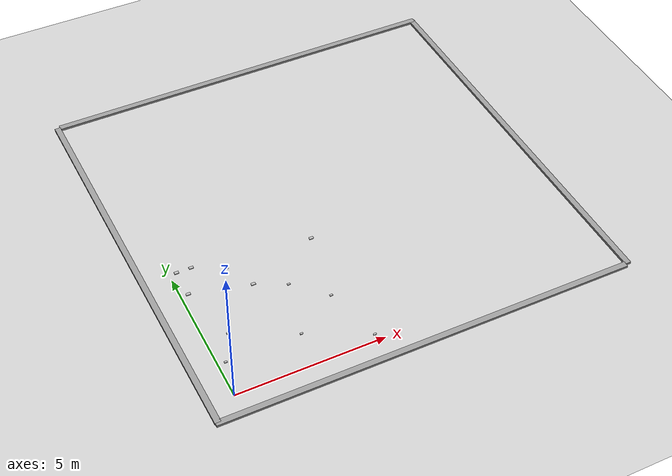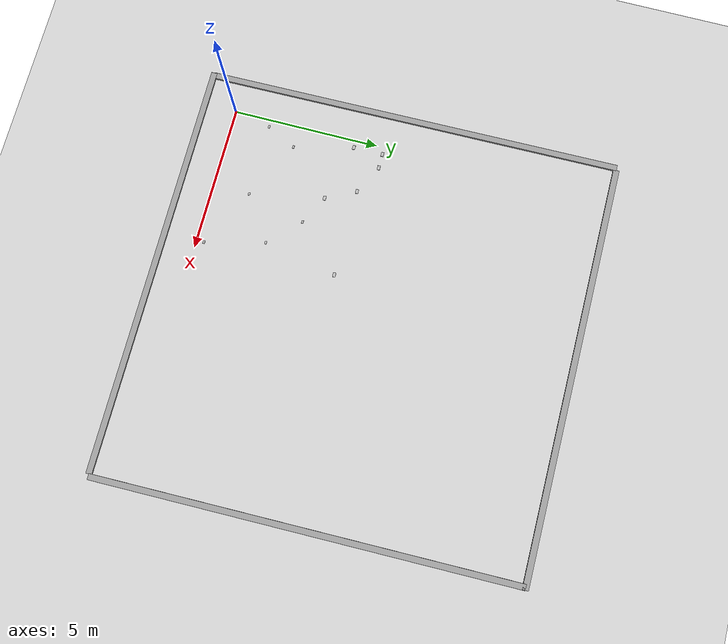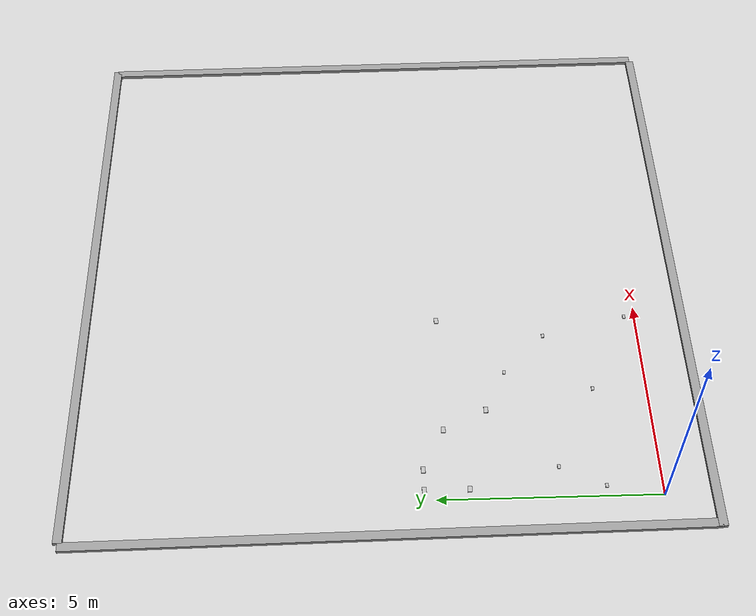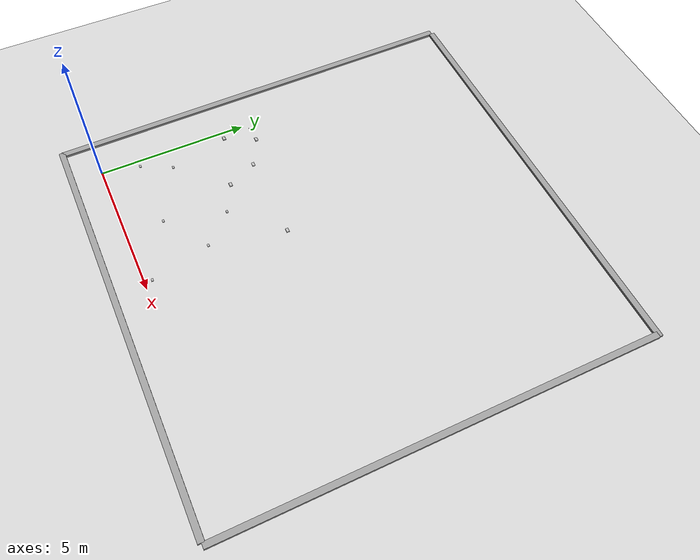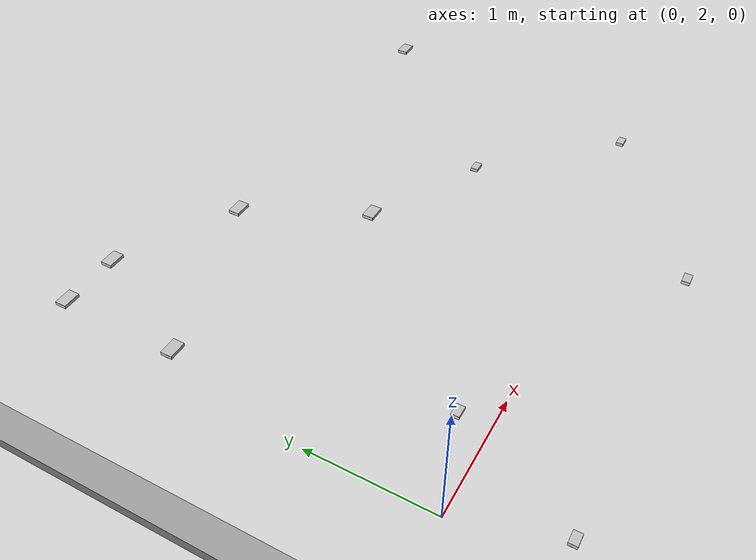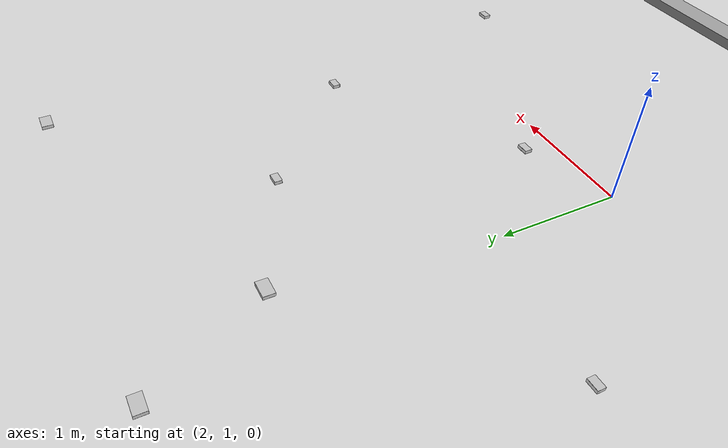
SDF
<sdf version="1.6">
 <world name="default">
  <light name="sun" type="directional">
   <pose>0 0 10 0 -0 0</pose>
   <diffuse>0.8 0.8 0.8 1</diffuse>
   <specular>0.1 0.1 0.1 1</specular>
   <attenuation>
    <range>1000</range>
    <constant>0.9</constant>
    <linear>0.01</linear>
    <quadratic>0.001</quadratic>
   </attenuation>
   <direction>-0.5 0.5 -1</direction>
  </light>
  <model name="ground_plane">
   <static>1</static>
   <link name="link">
    <collision name="collision">
     <geometry><plane><normal>0 0 1</normal><size>100 100</size></plane></geometry>
     <surface><friction><ode><mu>100</mu><mu2>50</mu2></ode></friction></surface>
    </collision>
    <visual name="visual">
     <cast_shadows>0</cast_shadows>
     <geometry><plane><normal>0 0 1</normal><size>100 100</size></plane></geometry>
     <material>
      <script><uri>file://media/materials/scripts/gazebo.material</uri><name>Gazebo/Grey</name></script>
     </material>
    </visual>
   </link>
  </model>
  <gravity>0 0 -9.8</gravity>
  <magnetic_field>6e-06 2.3e-05 -4.2e-05</magnetic_field>
  <atmosphere type="adiabatic"/>
  <physics name="default_physics" default="0" type="ode">
   <max_step_size>0.001</max_step_size>
   <real_time_factor>1</real_time_factor>
   <real_time_update_rate>1000</real_time_update_rate>
  </physics>
  <scene><ambient>0.4 0.4 0.4 1</ambient><background>0.7 0.7 0.7 1</background><shadows>1</shadows></scene>
  <spherical_coordinates>
   <surface_model>EARTH_WGS84</surface_model>
   <latitude_deg>0</latitude_deg>
   <longitude_deg>0</longitude_deg>
   <elevation>0</elevation>
   <heading_deg>0</heading_deg>
  </spherical_coordinates>
  <model name="wall1">
   <static>1</static>
   <link name="link">
    <pose>0 0 0.42 0 -0 0</pose>
    <collision name="collision"><geometry><box><size>14 0.2 0.084</size></box></geometry></collision>
    <visual name="visual">
     <cast_shadows>0</cast_shadows>
     <geometry><box><size>14 0.2 0.084</size></box></geometry>
     <material>
      <script>
       <uri>model://grey_wall/materials/scripts</uri>
       <uri>model://grey_wall/materials/textures</uri>
       <name>vrc/grey_wall</name>
      </script>
     </material>
    </visual>
   </link>
   <pose>-1 6.0 0 0 -0 -1.55905</pose>
  </model>
  <model name="wall2">
   <static>1</static>
   <link name="link">
    <pose>0 0 0.42 0 -0 0</pose>
    <collision name="collision"><geometry><box><size>14 0.2 0.084</size></box></geometry></collision>
    <visual name="visual">
     <cast_shadows>0</cast_shadows>
     <geometry><box><size>14 0.2 0.084</size></box></geometry>
     <material>
      <script>
       <uri>model://grey_wall/materials/scripts</uri>
       <uri>model://grey_wall/materials/textures</uri>
       <name>vrc/grey_wall</name>
      </script>
     </material>
    </visual>
   </link>
   <pose>6.0 13.0 0 0 -0 0</pose>
  </model>
  <model name="wall3">
   <static>1</static>
   <link name="link">
    <pose>0 0 0.42 0 -0 0</pose>
    <collision name="collision"><geometry><box><size>14 0.2 0.084</size></box></geometry></collision>
    <visual name="visual">
     <cast_shadows>0</cast_shadows>
     <geometry><box><size>14 0.2 0.084</size></box></geometry>
     <material>
      <script>
       <uri>model://grey_wall/materials/scripts</uri>
       <uri>model://grey_wall/materials/textures</uri>
       <name>vrc/grey_wall</name>
      </script>
     </material>
    </visual>
   </link>
   <pose>13.0 6.0 0 0 -0 -1.55905</pose>
  </model>
  <model name="wall4">
   <static>1</static>
   <link name="link">
    <pose>0 0 0.42 0 -0 0</pose>
    <collision name="collision"><geometry><box><size>14 0.2 0.084</size></box></geometry></collision>
    <visual name="visual">
     <cast_shadows>0</cast_shadows>
     <geometry><box><size>14 0.2 0.084</size></box></geometry>
     <material>
      <script>
       <uri>model://grey_wall/materials/scripts</uri>
       <uri>model://grey_wall/materials/textures</uri>
       <name>vrc/grey_wall</name>
      </script>
     </material>
    </visual>
   </link>
   <pose>6.0 -1 0 0 -0 0</pose>
  </model>
  <model name="book_1">
   <link name="cover">
    <pose>0 -0.000108 0.015405 0 -0 0</pose>
    <visual name="visual">
     <geometry><box><size>0.098 0.064 0.03</size></box></geometry>
     <material>
      <script>
       <uri>model://book_1/materials/scripts/book_1.material</uri>
       <uri>model://book_1/materials/textures/cover1.jpg</uri>
       <name>book_1</name>
      </script>
     </material>
    </visual>
    <collision name="collision">
     <geometry><box><size>0.098 0.064 0.03</size></box></geometry>
     <surface><friction><ode><mu>1000</mu><mu2>1000</mu2></ode></friction></surface>
    </collision>
    <inertial>
     <inertia><ixx>0.00058</ixx><ixy>0</ixy><ixz>0</ixz><iyy>0.00058</iyy><iyz>0</iyz><izz>0.00019</izz></inertia>
     <mass>0.05</mass>
    </inertial>
   </link>
   <link name="page">
    <pose>0 0.000608 0.015405 0 -0 0</pose>
    <visual name="visual">
     <geometry><box><size>0.098008 0.063448 0.028</size></box></geometry>
     <material>
      <lighting>1</lighting>
      <ambient>1 1 1 1</ambient>
      <diffuse>1 1 1 1</diffuse>
      <specular>0.01 0.01 0.01 1</specular>
      <emissive>0 0 0 1</emissive>
      <shader type="vertex"><normal_map>__default__</normal_map></shader>
     </material>
    </visual>
    <collision name="collision">
     <geometry><box><size>0.098 0.064 0.03</size></box></geometry>
     <surface><friction><ode><mu>1000</mu><mu2>1000</mu2></ode></friction></surface>
    </collision>
    <inertial>
     <inertia><ixx>0.00058</ixx><ixy>0</ixy><ixz>0</ixz><iyy>0.00058</iyy><iyz>0</iyz><izz>0.00019</izz></inertia>
     <mass>0.05</mass>
    </inertial>
   </link>
   <static>0</static>
   <pose>0.75 2.25 -0.000405 -1e-06 1e-06 0</pose>
  </model>
  <model name="book_2">
   <link name="cover">
    <pose>0 -0.000108 0.015405 0 -0 0</pose>
    <visual name="visual">
     <geometry><box><size>0.098 0.064 0.03</size></box></geometry>
     <material>
      <script>
       <uri>model://book_1/materials/scripts/book_1.material</uri>
       <uri>model://book_1/materials/textures/cover1.jpg</uri>
       <name>book_1</name>
      </script>
     </material>
    </visual>
    <collision name="collision">
     <geometry><box><size>0.098 0.064 0.03</size></box></geometry>
     <surface><friction><ode><mu>1000</mu><mu2>1000</mu2></ode></friction></surface>
    </collision>
    <inertial>
     <inertia><ixx>0.00058</ixx><ixy>0</ixy><ixz>0</ixz><iyy>0.00058</iyy><iyz>0</iyz><izz>0.00019</izz></inertia>
     <mass>0.05</mass>
    </inertial>
   </link>
   <link name="page">
    <pose>0 0.000608 0.015405 0 -0 0</pose>
    <visual name="visual">
     <geometry><box><size>0.098008 0.063448 0.028</size></box></geometry>
     <material>
      <lighting>1</lighting>
      <ambient>1 1 1 1</ambient>
      <diffuse>1 1 1 1</diffuse>
      <specular>0.01 0.01 0.01 1</specular>
      <emissive>0 0 0 1</emissive>
      <shader type="vertex"><normal_map>__default__</normal_map></shader>
     </material>
    </visual>
    <collision name="collision">
     <geometry><box><size>0.098 0.064 0.03</size></box></geometry>
     <surface><friction><ode><mu>1000</mu><mu2>1000</mu2></ode></friction></surface>
    </collision>
    <inertial>
     <inertia><ixx>0.00058</ixx><ixy>0</ixy><ixz>0</ixz><iyy>0.00058</iyy><iyz>0</iyz><izz>0.00019</izz></inertia>
     <mass>0.05</mass>
    </inertial>
   </link>
   <static>0</static>
   <pose>4.75 0.25 -0.000405 -1e-06 1e-06 0</pose>
  </model>
  <model name="book_3">
   <link name="cover">
    <pose>0 -0.000108 0.015405 0 -0 0</pose>
    <visual name="visual">
     <geometry><box><size>0.098 0.064 0.03</size></box></geometry>
     <material>
      <script>
       <uri>model://book_1/materials/scripts/book_1.material</uri>
       <uri>model://book_1/materials/textures/cover1.jpg</uri>
       <name>book_1</name>
      </script>
     </material>
    </visual>
    <collision name="collision">
     <geometry><box><size>0.098 0.064 0.03</size></box></geometry>
     <surface><friction><ode><mu>1000</mu><mu2>1000</mu2></ode></friction></surface>
    </collision>
    <inertial>
     <inertia><ixx>0.00058</ixx><ixy>0</ixy><ixz>0</ixz><iyy>0.00058</iyy><iyz>0</iyz><izz>0.00019</izz></inertia>
     <mass>0.05</mass>
    </inertial>
   </link>
   <link name="page">
    <pose>0 0.000608 0.015405 0 -0 0</pose>
    <visual name="visual">
     <geometry><box><size>0.098008 0.063448 0.028</size></box></geometry>
     <material>
      <lighting>1</lighting>
      <ambient>1 1 1 1</ambient>
      <diffuse>1 1 1 1</diffuse>
      <specular>0.01 0.01 0.01 1</specular>
      <emissive>0 0 0 1</emissive>
      <shader type="vertex"><normal_map>__default__</normal_map></shader>
     </material>
    </visual>
    <collision name="collision">
     <geometry><box><size>0.098 0.064 0.03</size></box></geometry>
     <surface><friction><ode><mu>1000</mu><mu2>1000</mu2></ode></friction></surface>
    </collision>
    <inertial>
     <inertia><ixx>0.00058</ixx><ixy>0</ixy><ixz>0</ixz><iyy>0.00058</iyy><iyz>0</iyz><izz>0.00019</izz></inertia>
     <mass>0.05</mass>
    </inertial>
   </link>
   <static>0</static>
   <pose>3.25 3.25 -0.000405 -1e-06 1e-06 0</pose>
  </model>
  <model name="book_4">
   <link name="cover">
    <pose>0 -0.000108 0.015405 0 -0 0</pose>
    <visual name="visual">
     <geometry><box><size>0.147 0.096 0.03</size></box></geometry>
     <material>
      <script>
       <uri>model://book_1/materials/scripts/book_1.material</uri>
       <uri>model://book_1/materials/textures/cover1.jpg</uri>
       <name>book_1</name>
      </script>
     </material>
    </visual>
    <collision name="collision">
     <geometry><box><size>0.147 0.096 0.03</size></box></geometry>
     <surface><friction><ode><mu>1000</mu><mu2>1000</mu2></ode></friction></surface>
    </collision>
    <inertial>
     <inertia><ixx>0.00058</ixx><ixy>0</ixy><ixz>0</ixz><iyy>0.00058</iyy><iyz>0</iyz><izz>0.00019</izz></inertia>
     <mass>0.05</mass>
    </inertial>
   </link>
   <link name="page">
    <pose>0 0.000608 0.015405 0 -0 0</pose>
    <visual name="visual">
     <geometry><box><size>0.147012 0.095172 0.028</size></box></geometry>
     <material>
      <lighting>1</lighting>
      <ambient>1 1 1 1</ambient>
      <diffuse>1 1 1 1</diffuse>
      <specular>0.01 0.01 0.01 1</specular>
      <emissive>0 0 0 1</emissive>
      <shader type="vertex"><normal_map>__default__</normal_map></shader>
     </material>
    </visual>
    <collision name="collision">
     <geometry><box><size>0.147 0.096 0.03</size></box></geometry>
     <surface><friction><ode><mu>1000</mu><mu2>1000</mu2></ode></friction></surface>
    </collision>
    <inertial>
     <inertia><ixx>0.00058</ixx><ixy>0</ixy><ixz>0</ixz><iyy>0.00058</iyy><iyz>0</iyz><izz>0.00019</izz></inertia>
     <mass>0.05</mass>
    </inertial>
   </link>
   <static>0</static>
   <pose>0.75 5.25 -0.000405 -1e-06 1e-06 0</pose>
  </model>
  <model name="book_5">
   <link name="cover">
    <pose>0 -0.000108 0.015405 0 -0 0</pose>
    <visual name="visual">
     <geometry><box><size>0.147 0.096 0.03</size></box></geometry>
     <material>
      <script>
       <uri>model://book_1/materials/scripts/book_1.material</uri>
       <uri>model://book_1/materials/textures/cover1.jpg</uri>
       <name>book_1</name>
      </script>
     </material>
    </visual>
    <collision name="collision">
     <geometry><box><size>0.147 0.096 0.03</size></box></geometry>
     <surface><friction><ode><mu>1000</mu><mu2>1000</mu2></ode></friction></surface>
    </collision>
    <inertial>
     <inertia><ixx>0.00058</ixx><ixy>0</ixy><ixz>0</ixz><iyy>0.00058</iyy><iyz>0</iyz><izz>0.00019</izz></inertia>
     <mass>0.05</mass>
    </inertial>
   </link>
   <link name="page">
    <pose>0 0.000608 0.015405 0 -0 0</pose>
    <visual name="visual">
     <geometry><box><size>0.147012 0.095172 0.028</size></box></geometry>
     <material>
      <lighting>1</lighting>
      <ambient>1 1 1 1</ambient>
      <diffuse>1 1 1 1</diffuse>
      <specular>0.01 0.01 0.01 1</specular>
      <emissive>0 0 0 1</emissive>
      <shader type="vertex"><normal_map>__default__</normal_map></shader>
     </material>
    </visual>
    <collision name="collision">
     <geometry><box><size>0.147 0.096 0.03</size></box></geometry>
     <surface><friction><ode><mu>1000</mu><mu2>1000</mu2></ode></friction></surface>
    </collision>
    <inertial>
     <inertia><ixx>0.00058</ixx><ixy>0</ixy><ixz>0</ixz><iyy>0.00058</iyy><iyz>0</iyz><izz>0.00019</izz></inertia>
     <mass>0.05</mass>
    </inertial>
   </link>
   <static>0</static>
   <pose>1.75 4.75 -0.000405 -1e-06 1e-06 0</pose>
  </model>
  <model name="book_6">
   <link name="cover">
    <pose>0 -0.000108 0.015405 0 -0 0</pose>
    <visual name="visual">
     <geometry><box><size>0.147 0.096 0.03</size></box></geometry>
     <material>
      <script>
       <uri>model://book_1/materials/scripts/book_1.material</uri>
       <uri>model://book_1/materials/textures/cover1.jpg</uri>
       <name>book_1</name>
      </script>
     </material>
    </visual>
    <collision name="collision">
     <geometry><box><size>0.147 0.096 0.03</size></box></geometry>
     <surface><friction><ode><mu>1000</mu><mu2>1000</mu2></ode></friction></surface>
    </collision>
    <inertial>
     <inertia><ixx>0.00058</ixx><ixy>0</ixy><ixz>0</ixz><iyy>0.00058</iyy><iyz>0</iyz><izz>0.00019</izz></inertia>
     <mass>0.05</mass>
    </inertial>
   </link>
   <link name="page">
    <pose>0 0.000608 0.015405 0 -0 0</pose>
    <visual name="visual">
     <geometry><box><size>0.147012 0.095172 0.028</size></box></geometry>
     <material>
      <lighting>1</lighting>
      <ambient>1 1 1 1</ambient>
      <diffuse>1 1 1 1</diffuse>
      <specular>0.01 0.01 0.01 1</specular>
      <emissive>0 0 0 1</emissive>
      <shader type="vertex"><normal_map>__default__</normal_map></shader>
     </material>
    </visual>
    <collision name="collision">
     <geometry><box><size>0.147 0.096 0.03</size></box></geometry>
     <surface><friction><ode><mu>1000</mu><mu2>1000</mu2></ode></friction></surface>
    </collision>
    <inertial>
     <inertia><ixx>0.00058</ixx><ixy>0</ixy><ixz>0</ixz><iyy>0.00058</iyy><iyz>0</iyz><izz>0.00019</izz></inertia>
     <mass>0.05</mass>
    </inertial>
   </link>
   <static>0</static>
   <pose>2.25 3.75 -0.000405 -1e-06 1e-06 0</pose>
  </model>
  <model name="book_7">
   <link name="cover">
    <pose>0 -0.000108 0.015405 0 -0 0</pose>
    <visual name="visual">
     <geometry><box><size>0.098 0.064 0.03</size></box></geometry>
     <material>
      <script>
       <uri>model://book_1/materials/scripts/book_2.material</uri>
       <uri>model://book_1/materials/textures/cover2.jpg</uri>
       <name>book_2</name>
      </script>
     </material>
    </visual>
    <collision name="collision">
     <geometry><box><size>0.098 0.064 0.03</size></box></geometry>
     <surface><friction><ode><mu>1000</mu><mu2>1000</mu2></ode></friction></surface>
    </collision>
    <inertial>
     <inertia><ixx>0.00058</ixx><ixy>0</ixy><ixz>0</ixz><iyy>0.00058</iyy><iyz>0</iyz><izz>0.00019</izz></inertia>
     <mass>0.05</mass>
    </inertial>
   </link>
   <link name="page">
    <pose>0 0.000608 0.015405 0 -0 0</pose>
    <visual name="visual">
     <geometry><box><size>0.098008 0.063448 0.028</size></box></geometry>
     <material>
      <lighting>1</lighting>
      <ambient>1 1 1 1</ambient>
      <diffuse>1 1 1 1</diffuse>
      <specular>0.01 0.01 0.01 1</specular>
      <emissive>0 0 0 1</emissive>
      <shader type="vertex"><normal_map>__default__</normal_map></shader>
     </material>
    </visual>
    <collision name="collision">
     <geometry><box><size>0.098 0.064 0.03</size></box></geometry>
     <surface><friction><ode><mu>1000</mu><mu2>1000</mu2></ode></friction></surface>
    </collision>
    <inertial>
     <inertia><ixx>0.00058</ixx><ixy>0</ixy><ixz>0</ixz><iyy>0.00058</iyy><iyz>0</iyz><izz>0.00019</izz></inertia>
     <mass>0.05</mass>
    </inertial>
   </link>
   <static>0</static>
   <pose>4.25 2.25 -0.000405 -1e-06 1e-06 0</pose>
  </model>
  <model name="book_8">
   <link name="cover">
    <pose>0 -0.000108 0.015405 0 -0 0</pose>
    <visual name="visual">
     <geometry><box><size>0.098 0.064 0.03</size></box></geometry>
     <material>
      <script>
       <uri>model://book_1/materials/scripts/book_2.material</uri>
       <uri>model://book_1/materials/textures/cover2.jpg</uri>
       <name>book_2</name>
      </script>
     </material>
    </visual>
    <collision name="collision">
     <geometry><box><size>0.098 0.064 0.03</size></box></geometry>
     <surface><friction><ode><mu>1000</mu><mu2>1000</mu2></ode></friction></surface>
    </collision>
    <inertial>
     <inertia><ixx>0.00058</ixx><ixy>0</ixy><ixz>0</ixz><iyy>0.00058</iyy><iyz>0</iyz><izz>0.00019</izz></inertia>
     <mass>0.05</mass>
    </inertial>
   </link>
   <link name="page">
    <pose>0 0.000608 0.015405 0 -0 0</pose>
    <visual name="visual">
     <geometry><box><size>0.098008 0.063448 0.028</size></box></geometry>
     <material>
      <lighting>1</lighting>
      <ambient>1 1 1 1</ambient>
      <diffuse>1 1 1 1</diffuse>
      <specular>0.01 0.01 0.01 1</specular>
      <emissive>0 0 0 1</emissive>
      <shader type="vertex"><normal_map>__default__</normal_map></shader>
     </material>
    </visual>
    <collision name="collision">
     <geometry><box><size>0.098 0.064 0.03</size></box></geometry>
     <surface><friction><ode><mu>1000</mu><mu2>1000</mu2></ode></friction></surface>
    </collision>
    <inertial>
     <inertia><ixx>0.00058</ixx><ixy>0</ixy><ixz>0</ixz><iyy>0.00058</iyy><iyz>0</iyz><izz>0.00019</izz></inertia>
     <mass>0.05</mass>
    </inertial>
   </link>
   <static>0</static>
   <pose>0.25 1.25 -0.000405 -1e-06 1e-06 0</pose>
  </model>
  <model name="book_9">
   <link name="cover">
    <pose>0 -0.000108 0.015405 0 -0 0</pose>
    <visual name="visual">
     <geometry><box><size>0.098 0.064 0.03</size></box></geometry>
     <material>
      <script>
       <uri>model://book_1/materials/scripts/book_2.material</uri>
       <uri>model://book_1/materials/textures/cover2.jpg</uri>
       <name>book_2</name>
      </script>
     </material>
    </visual>
    <collision name="collision">
     <geometry><box><size>0.098 0.064 0.03</size></box></geometry>
     <surface><friction><ode><mu>1000</mu><mu2>1000</mu2></ode></friction></surface>
    </collision>
    <inertial>
     <inertia><ixx>0.00058</ixx><ixy>0</ixy><ixz>0</ixz><iyy>0.00058</iyy><iyz>0</iyz><izz>0.00019</izz></inertia>
     <mass>0.05</mass>
    </inertial>
   </link>
   <link name="page">
    <pose>0 0.000608 0.015405 0 -0 0</pose>
    <visual name="visual">
     <geometry><box><size>0.098008 0.063448 0.028</size></box></geometry>
     <material>
      <lighting>1</lighting>
      <ambient>1 1 1 1</ambient>
      <diffuse>1 1 1 1</diffuse>
      <specular>0.01 0.01 0.01 1</specular>
      <emissive>0 0 0 1</emissive>
      <shader type="vertex"><normal_map>__default__</normal_map></shader>
     </material>
    </visual>
    <collision name="collision">
     <geometry><box><size>0.098 0.064 0.03</size></box></geometry>
     <surface><friction><ode><mu>1000</mu><mu2>1000</mu2></ode></friction></surface>
    </collision>
    <inertial>
     <inertia><ixx>0.00058</ixx><ixy>0</ixy><ixz>0</ixz><iyy>0.00058</iyy><iyz>0</iyz><izz>0.00019</izz></inertia>
     <mass>0.05</mass>
    </inertial>
   </link>
   <static>0</static>
   <pose>2.75 1.25 -0.000405 -1e-06 1e-06 0</pose>
  </model>
  <model name="book_10">
   <link name="cover">
    <pose>0 -0.000108 0.015405 0 -0 0</pose>
    <visual name="visual">
     <geometry><box><size>0.147 0.096 0.03</size></box></geometry>
     <material>
      <script>
       <uri>model://book_1/materials/scripts/book_2.material</uri>
       <uri>model://book_1/materials/textures/cover2.jpg</uri>
       <name>book_2</name>
      </script>
     </material>
    </visual>
    <collision name="collision">
     <geometry><box><size>0.147 0.096 0.03</size></box></geometry>
     <surface><friction><ode><mu>1000</mu><mu2>1000</mu2></ode></friction></surface>
    </collision>
    <inertial>
     <inertia><ixx>0.00058</ixx><ixy>0</ixy><ixz>0</ixz><iyy>0.00058</iyy><iyz>0</iyz><izz>0.00019</izz></inertia>
     <mass>0.05</mass>
    </inertial>
   </link>
   <link name="page">
    <pose>0 0.000608 0.015405 0 -0 0</pose>
    <visual name="visual">
     <geometry><box><size>0.147012 0.095172 0.028</size></box></geometry>
     <material>
      <lighting>1</lighting>
      <ambient>1 1 1 1</ambient>
      <diffuse>1 1 1 1</diffuse>
      <specular>0.01 0.01 0.01 1</specular>
      <emissive>0 0 0 1</emissive>
      <shader type="vertex"><normal_map>__default__</normal_map></shader>
     </material>
    </visual>
    <collision name="collision">
     <geometry><box><size>0.147 0.096 0.03</size></box></geometry>
     <surface><friction><ode><mu>1000</mu><mu2>1000</mu2></ode></friction></surface>
    </collision>
    <inertial>
     <inertia><ixx>0.00058</ixx><ixy>0</ixy><ixz>0</ixz><iyy>0.00058</iyy><iyz>0</iyz><izz>0.00019</izz></inertia>
     <mass>0.05</mass>
    </inertial>
   </link>
   <static>0</static>
   <pose>0.25 4.25 -0.000405 -1e-06 1e-06 0</pose>
  </model>
  <model name="book_11">
   <link name="cover">
    <pose>0 -0.000108 0.015405 0 -0 0</pose>
    <visual name="visual">
     <geometry><box><size>0.147 0.096 0.03</size></box></geometry>
     <material>
      <script>
       <uri>model://book_1/materials/scripts/book_2.material</uri>
       <uri>model://book_1/materials/textures/cover2.jpg</uri>
       <name>book_2</name>
      </script>
     </material>
    </visual>
    <collision name="collision">
     <geometry><box><size>0.147 0.096 0.03</size></box></geometry>
     <surface><friction><ode><mu>1000</mu><mu2>1000</mu2></ode></friction></surface>
    </collision>
    <inertial>
     <inertia><ixx>0.00058</ixx><ixy>0</ixy><ixz>0</ixz><iyy>0.00058</iyy><iyz>0</iyz><izz>0.00019</izz></inertia>
     <mass>0.05</mass>
    </inertial>
   </link>
   <link name="page">
    <pose>0 0.000608 0.015405 0 -0 0</pose>
    <visual name="visual">
     <geometry><box><size>0.147012 0.095172 0.028</size></box></geometry>
     <material>
      <lighting>1</lighting>
      <ambient>1 1 1 1</ambient>
      <diffuse>1 1 1 1</diffuse>
      <specular>0.01 0.01 0.01 1</specular>
      <emissive>0 0 0 1</emissive>
      <shader type="vertex"><normal_map>__default__</normal_map></shader>
     </material>
    </visual>
    <collision name="collision">
     <geometry><box><size>0.147 0.096 0.03</size></box></geometry>
     <surface><friction><ode><mu>1000</mu><mu2>1000</mu2></ode></friction></surface>
    </collision>
    <inertial>
     <inertia><ixx>0.00058</ixx><ixy>0</ixy><ixz>0</ixz><iyy>0.00058</iyy><iyz>0</iyz><izz>0.00019</izz></inertia>
     <mass>0.05</mass>
    </inertial>
   </link>
   <static>0</static>
   <pose>4.75 4.75 -0.000405 -1e-06 1e-06 0</pose>
  </model>
  <model name="book_12">
   <link name="cover">
    <pose>0 -0.000108 0.015405 0 -0 0</pose>
    <visual name="visual">
     <geometry><box><size>0.147 0.096 0.03</size></box></geometry>
     <material>
      <script>
       <uri>model://book_1/materials/scripts/book_2.material</uri>
       <uri>model://book_1/materials/textures/cover2.jpg</uri>
       <name>book_2</name>
      </script>
     </material>
    </visual>
    <collision name="collision">
     <geometry><box><size>0.147 0.096 0.03</size></box></geometry>
     <surface><friction><ode><mu>1000</mu><mu2>1000</mu2></ode></friction></surface>
    </collision>
    <inertial>
     <inertia><ixx>0.00058</ixx><ixy>0</ixy><ixz>0</ixz><iyy>0.00058</iyy><iyz>0</iyz><izz>0.00019</izz></inertia>
     <mass>0.05</mass>
    </inertial>
   </link>
   <link name="page">
    <pose>0 0.000608 0.015405 0 -0 0</pose>
    <visual name="visual">
     <geometry><box><size>0.147012 0.095172 0.028</size></box></geometry>
     <material>
      <lighting>1</lighting>
      <ambient>1 1 1 1</ambient>
      <diffuse>1 1 1 1</diffuse>
      <specular>0.01 0.01 0.01 1</specular>
      <emissive>0 0 0 1</emissive>
      <shader type="vertex"><normal_map>__default__</normal_map></shader>
     </material>
    </visual>
    <collision name="collision">
     <geometry><box><size>0.147 0.096 0.03</size></box></geometry>
     <surface><friction><ode><mu>1000</mu><mu2>1000</mu2></ode></friction></surface>
    </collision>
    <inertial>
     <inertia><ixx>0.00058</ixx><ixy>0</ixy><ixz>0</ixz><iyy>0.00058</iyy><iyz>0</iyz><izz>0.00019</izz></inertia>
     <mass>0.05</mass>
    </inertial>
   </link>
   <static>0</static>
   <pose>0.25 5.25 -0.000405 -1e-06 1e-06 0</pose>
  </model>
 </world>
</sdf>
